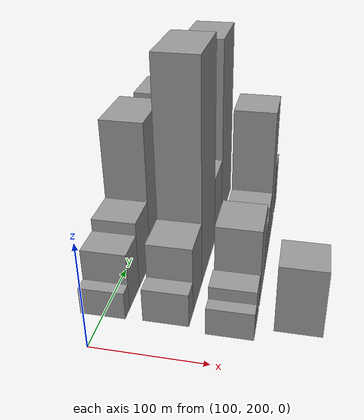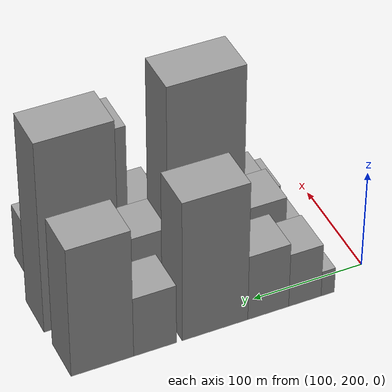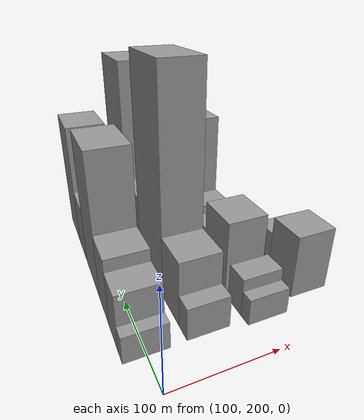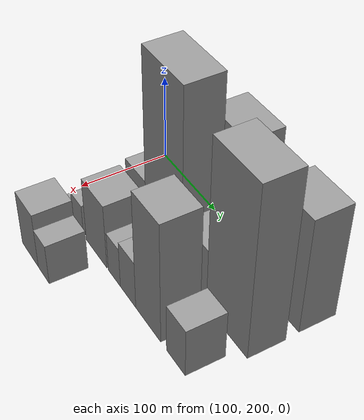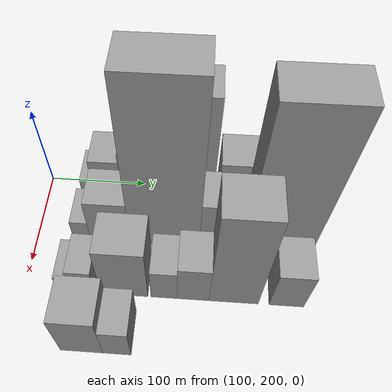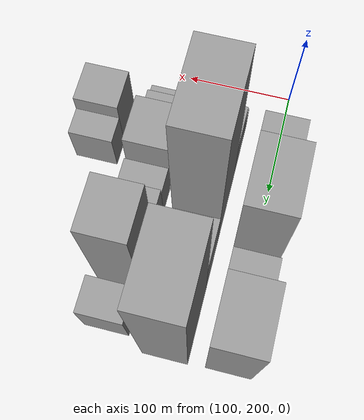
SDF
<sdf version="1.6">
 <world name="default">
  <model name="building_34">
   <static>1</static>
   <pose>100.0000 242.2070 0 0.000000 0.000000 0.000000</pose>
   <link name="link">
    <pose>0 0 13.50 0 0 0</pose>
    <collision name="collision"><geometry><box><size>40.0000 12.2397 27.0000</size></box></geometry></collision>
    <visual name="visual">
     <cast_shadows>0</cast_shadows>
     <geometry><box><size>40.0000 12.2397 27.0000</size></box></geometry>
     <material>
      <script>
       <uri>model://grey_wall/materials/scripts</uri>
       <uri>model://grey_wall/materials/textures</uri>
       <name>vrc/grey_wall</name>
      </script>
     </material>
    </visual>
   </link>
  </model>
  <model name="building_35">
   <static>1</static>
   <pose>100.0000 263.1546 0 0.000000 0.000000 0.000000</pose>
   <link name="link">
    <pose>0 0 28.50 0 0 0</pose>
    <collision name="collision"><geometry><box><size>40.0000 29.6554 57.0000</size></box></geometry></collision>
    <visual name="visual">
     <cast_shadows>0</cast_shadows>
     <geometry><box><size>40.0000 29.6554 57.0000</size></box></geometry>
     <material>
      <script>
       <uri>model://grey_wall/materials/scripts</uri>
       <uri>model://grey_wall/materials/textures</uri>
       <name>vrc/grey_wall</name>
      </script>
     </material>
    </visual>
   </link>
  </model>
  <model name="building_36">
   <static>1</static>
   <pose>100.0000 296.5059 0 0.000000 0.000000 0.000000</pose>
   <link name="link">
    <pose>0 0 34.50 0 0 0</pose>
    <collision name="collision"><geometry><box><size>40.0000 37.0472 69.0000</size></box></geometry></collision>
    <visual name="visual">
     <cast_shadows>0</cast_shadows>
     <geometry><box><size>40.0000 37.0472 69.0000</size></box></geometry>
     <material>
      <script>
       <uri>model://grey_wall/materials/scripts</uri>
       <uri>model://grey_wall/materials/textures</uri>
       <name>vrc/grey_wall</name>
      </script>
     </material>
    </visual>
   </link>
  </model>
  <model name="building_37">
   <static>1</static>
   <pose>100.0000 344.2354 0 0.000000 0.000000 0.000000</pose>
   <link name="link">
    <pose>0 0 73.50 0 0 0</pose>
    <collision name="collision"><geometry><box><size>40.0000 58.4118 147.0000</size></box></geometry></collision>
    <visual name="visual">
     <cast_shadows>0</cast_shadows>
     <geometry><box><size>40.0000 58.4118 147.0000</size></box></geometry>
     <material>
      <script>
       <uri>model://grey_wall/materials/scripts</uri>
       <uri>model://grey_wall/materials/textures</uri>
       <name>vrc/grey_wall</name>
      </script>
     </material>
    </visual>
   </link>
  </model>
  <model name="building_38">
   <static>1</static>
   <pose>100.0000 397.1928 0 0.000000 0.000000 0.000000</pose>
   <link name="link">
    <pose>0 0 31.50 0 0 0</pose>
    <collision name="collision"><geometry><box><size>40.0000 37.5030 63.0000</size></box></geometry></collision>
    <visual name="visual">
     <cast_shadows>0</cast_shadows>
     <geometry><box><size>40.0000 37.5030 63.0000</size></box></geometry>
     <material>
      <script>
       <uri>model://grey_wall/materials/scripts</uri>
       <uri>model://grey_wall/materials/textures</uri>
       <name>vrc/grey_wall</name>
      </script>
     </material>
    </visual>
   </link>
  </model>
  <model name="building_39">
   <static>1</static>
   <pose>100.0000 442.8847 0 0.000000 0.000000 0.000000</pose>
   <link name="link">
    <pose>0 0 67.50 0 0 0</pose>
    <collision name="collision"><geometry><box><size>40.0000 53.8809 135.0000</size></box></geometry></collision>
    <visual name="visual">
     <cast_shadows>0</cast_shadows>
     <geometry><box><size>40.0000 53.8809 135.0000</size></box></geometry>
     <material>
      <script>
       <uri>model://grey_wall/materials/scripts</uri>
       <uri>model://grey_wall/materials/textures</uri>
       <name>vrc/grey_wall</name>
      </script>
     </material>
    </visual>
   </link>
  </model>
  <model name="building_85">
   <static>1</static>
   <pose>155.0000 245.7394 0 0.000000 0.000000 0.000000</pose>
   <link name="link">
    <pose>0 0 16.50 0 0 0</pose>
    <collision name="collision"><geometry><box><size>40.0000 17.1807 33.0000</size></box></geometry></collision>
    <visual name="visual">
     <cast_shadows>0</cast_shadows>
     <geometry><box><size>40.0000 17.1807 33.0000</size></box></geometry>
     <material>
      <script>
       <uri>model://grey_wall/materials/scripts</uri>
       <uri>model://grey_wall/materials/textures</uri>
       <name>vrc/grey_wall</name>
      </script>
     </material>
    </visual>
   </link>
  </model>
  <model name="building_86">
   <static>1</static>
   <pose>155.0000 273.8346 0 0.000000 0.000000 0.000000</pose>
   <link name="link">
    <pose>0 0 33.00 0 0 0</pose>
    <collision name="collision"><geometry><box><size>40.0000 39.0097 66.0000</size></box></geometry></collision>
    <visual name="visual">
     <cast_shadows>0</cast_shadows>
     <geometry><box><size>40.0000 39.0097 66.0000</size></box></geometry>
     <material>
      <script>
       <uri>model://grey_wall/materials/scripts</uri>
       <uri>model://grey_wall/materials/textures</uri>
       <name>vrc/grey_wall</name>
      </script>
     </material>
    </visual>
   </link>
  </model>
  <model name="building_87">
   <static>1</static>
   <pose>155.0000 327.4245 0 0.000000 0.000000 0.000000</pose>
   <link name="link">
    <pose>0 0 108.00 0 0 0</pose>
    <collision name="collision"><geometry><box><size>40.0000 68.1700 216.0000</size></box></geometry></collision>
    <visual name="visual">
     <cast_shadows>0</cast_shadows>
     <geometry><box><size>40.0000 68.1700 216.0000</size></box></geometry>
     <material>
      <script>
       <uri>model://grey_wall/materials/scripts</uri>
       <uri>model://grey_wall/materials/textures</uri>
       <name>vrc/grey_wall</name>
      </script>
     </material>
    </visual>
   </link>
  </model>
  <model name="building_88">
   <static>1</static>
   <pose>155.0000 383.0594 0 0.000000 0.000000 0.000000</pose>
   <link name="link">
    <pose>0 0 36.00 0 0 0</pose>
    <collision name="collision"><geometry><box><size>40.0000 43.0999 72.0000</size></box></geometry></collision>
    <visual name="visual">
     <cast_shadows>0</cast_shadows>
     <geometry><box><size>40.0000 43.0999 72.0000</size></box></geometry>
     <material>
      <script>
       <uri>model://grey_wall/materials/scripts</uri>
       <uri>model://grey_wall/materials/textures</uri>
       <name>vrc/grey_wall</name>
      </script>
     </material>
    </visual>
   </link>
  </model>
  <model name="building_89">
   <static>1</static>
   <pose>155.0000 437.7868 0 0.000000 0.000000 0.000000</pose>
   <link name="link">
    <pose>0 0 99.00 0 0 0</pose>
    <collision name="collision"><geometry><box><size>40.0000 66.3550 198.0000</size></box></geometry></collision>
    <visual name="visual">
     <cast_shadows>0</cast_shadows>
     <geometry><box><size>40.0000 66.3550 198.0000</size></box></geometry>
     <material>
      <script>
       <uri>model://grey_wall/materials/scripts</uri>
       <uri>model://grey_wall/materials/textures</uri>
       <name>vrc/grey_wall</name>
      </script>
     </material>
    </visual>
   </link>
  </model>
  <model name="building_137">
   <static>1</static>
   <pose>210.0000 237.6743 0 0.000000 0.000000 0.000000</pose>
   <link name="link">
    <pose>0 0 13.50 0 0 0</pose>
    <collision name="collision"><geometry><box><size>40.0000 12.2636 27.0000</size></box></geometry></collision>
    <visual name="visual">
     <cast_shadows>0</cast_shadows>
     <geometry><box><size>40.0000 12.2636 27.0000</size></box></geometry>
     <material>
      <script>
       <uri>model://grey_wall/materials/scripts</uri>
       <uri>model://grey_wall/materials/textures</uri>
       <name>vrc/grey_wall</name>
      </script>
     </material>
    </visual>
   </link>
  </model>
  <model name="building_138">
   <static>1</static>
   <pose>210.0000 255.3234 0 0.000000 0.000000 0.000000</pose>
   <link name="link">
    <pose>0 0 19.50 0 0 0</pose>
    <collision name="collision"><geometry><box><size>40.0000 23.0345 39.0000</size></box></geometry></collision>
    <visual name="visual">
     <cast_shadows>0</cast_shadows>
     <geometry><box><size>40.0000 23.0345 39.0000</size></box></geometry>
     <material>
      <script>
       <uri>model://grey_wall/materials/scripts</uri>
       <uri>model://grey_wall/materials/textures</uri>
       <name>vrc/grey_wall</name>
      </script>
     </material>
    </visual>
   </link>
  </model>
  <model name="building_139">
   <static>1</static>
   <pose>210.0000 294.5655 0 0.000000 0.000000 0.000000</pose>
   <link name="link">
    <pose>0 0 39.00 0 0 0</pose>
    <collision name="collision"><geometry><box><size>40.0000 43.4496 78.0000</size></box></geometry></collision>
    <visual name="visual">
     <cast_shadows>0</cast_shadows>
     <geometry><box><size>40.0000 43.4496 78.0000</size></box></geometry>
     <material>
      <script>
       <uri>model://grey_wall/materials/scripts</uri>
       <uri>model://grey_wall/materials/textures</uri>
       <name>vrc/grey_wall</name>
      </script>
     </material>
    </visual>
   </link>
  </model>
  <model name="building_140">
   <static>1</static>
   <pose>210.0000 331.3820 0 0.000000 0.000000 0.000000</pose>
   <link name="link">
    <pose>0 0 24.00 0 0 0</pose>
    <collision name="collision"><geometry><box><size>40.0000 24.1835 48.0000</size></box></geometry></collision>
    <visual name="visual">
     <cast_shadows>0</cast_shadows>
     <geometry><box><size>40.0000 24.1835 48.0000</size></box></geometry>
     <material>
      <script>
       <uri>model://grey_wall/materials/scripts</uri>
       <uri>model://grey_wall/materials/textures</uri>
       <name>vrc/grey_wall</name>
      </script>
     </material>
    </visual>
   </link>
  </model>
  <model name="building_141">
   <static>1</static>
   <pose>210.0000 358.2164 0 0.000000 0.000000 0.000000</pose>
   <link name="link">
    <pose>0 0 28.50 0 0 0</pose>
    <collision name="collision"><geometry><box><size>40.0000 29.4853 57.0000</size></box></geometry></collision>
    <visual name="visual">
     <cast_shadows>0</cast_shadows>
     <geometry><box><size>40.0000 29.4853 57.0000</size></box></geometry>
     <material>
      <script>
       <uri>model://grey_wall/materials/scripts</uri>
       <uri>model://grey_wall/materials/textures</uri>
       <name>vrc/grey_wall</name>
      </script>
     </material>
    </visual>
   </link>
  </model>
  <model name="building_142">
   <static>1</static>
   <pose>210.0000 395.6234 0 0.000000 0.000000 0.000000</pose>
   <link name="link">
    <pose>0 0 70.50 0 0 0</pose>
    <collision name="collision"><geometry><box><size>40.0000 45.3287 141.0000</size></box></geometry></collision>
    <visual name="visual">
     <cast_shadows>0</cast_shadows>
     <geometry><box><size>40.0000 45.3287 141.0000</size></box></geometry>
     <material>
      <script>
       <uri>model://grey_wall/materials/scripts</uri>
       <uri>model://grey_wall/materials/textures</uri>
       <name>vrc/grey_wall</name>
      </script>
     </material>
    </visual>
   </link>
  </model>
  <model name="building_143">
   <static>1</static>
   <pose>210.0000 444.0224 0 0.000000 0.000000 0.000000</pose>
   <link name="link">
    <pose>0 0 28.50 0 0 0</pose>
    <collision name="collision"><geometry><box><size>40.0000 31.4693 57.0000</size></box></geometry></collision>
    <visual name="visual">
     <cast_shadows>0</cast_shadows>
     <geometry><box><size>40.0000 31.4693 57.0000</size></box></geometry>
     <material>
      <script>
       <uri>model://grey_wall/materials/scripts</uri>
       <uri>model://grey_wall/materials/textures</uri>
       <name>vrc/grey_wall</name>
      </script>
     </material>
    </visual>
   </link>
  </model>
  <model name="building_191">
   <static>1</static>
   <pose>265.0000 264.1701 0 0.000000 0.000000 0.000000</pose>
   <link name="link">
    <pose>0 0 33.00 0 0 0</pose>
    <collision name="collision"><geometry><box><size>40.0000 37.4084 66.0000</size></box></geometry></collision>
    <visual name="visual">
     <cast_shadows>0</cast_shadows>
     <geometry><box><size>40.0000 37.4084 66.0000</size></box></geometry>
     <material>
      <script>
       <uri>model://grey_wall/materials/scripts</uri>
       <uri>model://grey_wall/materials/textures</uri>
       <name>vrc/grey_wall</name>
      </script>
     </material>
    </visual>
   </link>
  </model>
  <model name="building_192">
   <static>1</static>
   <pose>265.0000 295.1144 0 0.000000 0.000000 0.000000</pose>
   <link name="link">
    <pose>0 0 24.00 0 0 0</pose>
    <collision name="collision"><geometry><box><size>40.0000 24.4801 48.0000</size></box></geometry></collision>
    <visual name="visual">
     <cast_shadows>0</cast_shadows>
     <geometry><box><size>40.0000 24.4801 48.0000</size></box></geometry>
     <material>
      <script>
       <uri>model://grey_wall/materials/scripts</uri>
       <uri>model://grey_wall/materials/textures</uri>
       <name>vrc/grey_wall</name>
      </script>
     </material>
    </visual>
   </link>
  </model>
 </world>
</sdf>
